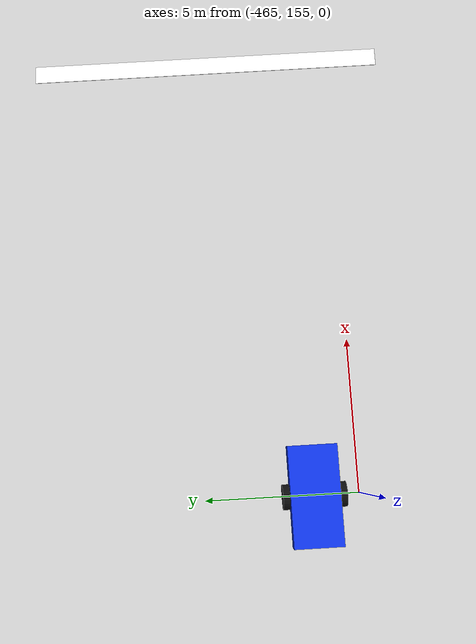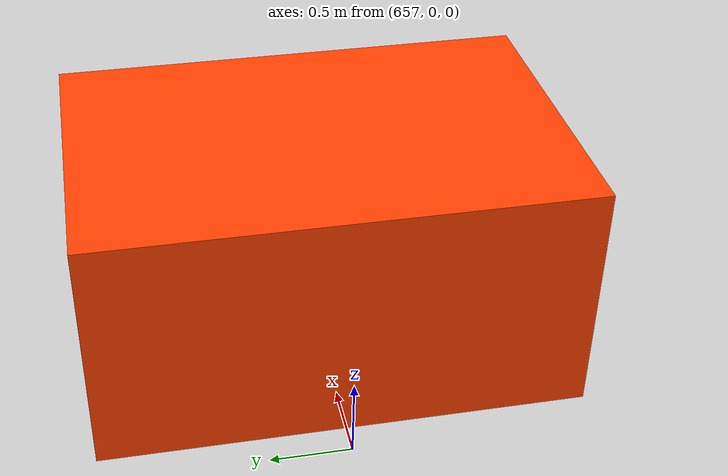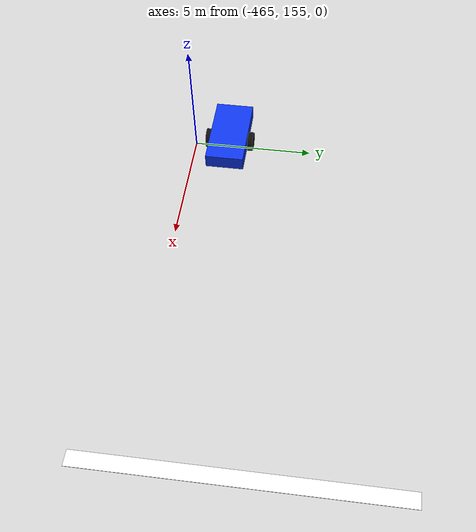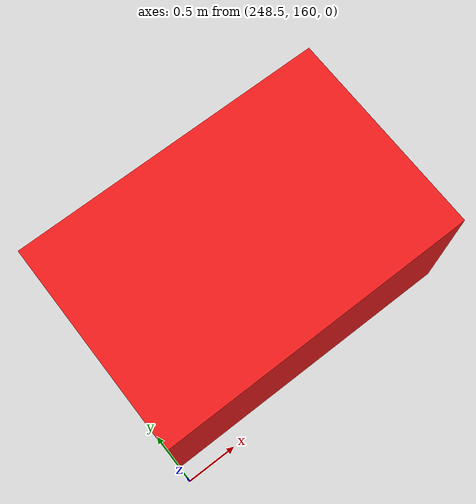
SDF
<sdf version="1.6">
 <world name="track_3km">
  <gravity>0 0 -9.80665</gravity>
  <physics name="default_physics" type="ode">
   <max_step_size>0.001</max_step_size>
   <real_time_update_rate>1000</real_time_update_rate>
  </physics>
  <include><uri>model://sun</uri></include>
  <include><uri>model://ground_plane</uri></include>
  <model name="simple_vehicle">
   <pose>-465 156.5 0 0 0 0</pose>
   <link name="chassis">
    <pose>0 0 0.65 0 0 0</pose>
    <inertial>
     <mass>80</mass>
     <inertia><ixx>20</ixx><iyy>40</iyy><izz>45</izz><ixy>0</ixy><ixz>0</ixz><iyz>0</iyz></inertia>
    </inertial>
    <collision name="collision"><geometry><box><size>3.2 1.6 0.6</size></box></geometry></collision>
    <visual name="visual">
     <geometry><box><size>3.2 1.6 0.6</size></box></geometry>
     <material><ambient>0.05 0.2 0.9 1</ambient><diffuse>0.05 0.2 0.9 1</diffuse></material>
    </visual>
   </link>
   <link name="left_wheel">
    <pose>0 0.9 0.42 1.5708 0 0</pose>
    <inertial>
     <mass>5</mass>
     <inertia><ixx>0.4</ixx><iyy>0.4</iyy><izz>0.4</izz><ixy>0</ixy><ixz>0</ixz><iyz>0</iyz></inertia>
    </inertial>
    <collision name="collision">
     <geometry><cylinder><radius>0.4</radius><length>0.25</length></cylinder></geometry>
     <surface><friction><ode><mu>2</mu><mu2>2</mu2></ode></friction></surface>
    </collision>
    <visual name="visual">
     <geometry><cylinder><radius>0.4</radius><length>0.25</length></cylinder></geometry>
     <material><ambient>0.05 0.05 0.05 1</ambient><diffuse>0.05 0.05 0.05 1</diffuse></material>
    </visual>
   </link>
   <link name="right_wheel">
    <pose>0 -0.9 0.42 1.5708 0 0</pose>
    <inertial>
     <mass>5</mass>
     <inertia><ixx>0.4</ixx><iyy>0.4</iyy><izz>0.4</izz><ixy>0</ixy><ixz>0</ixz><iyz>0</iyz></inertia>
    </inertial>
    <collision name="collision">
     <geometry><cylinder><radius>0.4</radius><length>0.25</length></cylinder></geometry>
     <surface><friction><ode><mu>2</mu><mu2>2</mu2></ode></friction></surface>
    </collision>
    <visual name="visual">
     <geometry><cylinder><radius>0.4</radius><length>0.25</length></cylinder></geometry>
     <material><ambient>0.05 0.05 0.05 1</ambient><diffuse>0.05 0.05 0.05 1</diffuse></material>
    </visual>
   </link>
   <link name="front_caster">
    <pose>1.15 0 0.25 0 0 0</pose>
    <inertial>
     <mass>2</mass>
     <inertia><ixx>0.05</ixx><iyy>0.05</iyy><izz>0.05</izz><ixy>0</ixy><ixz>0</ixz><iyz>0</iyz></inertia>
    </inertial>
    <collision name="collision">
     <geometry><sphere><radius>0.25</radius></sphere></geometry>
     <surface><friction><ode><mu>0.05</mu><mu2>0.05</mu2></ode></friction></surface>
    </collision>
    <visual name="visual">
     <geometry><sphere><radius>0.25</radius></sphere></geometry>
     <material><ambient>0.1 0.1 0.1 1</ambient><diffuse>0.1 0.1 0.1 1</diffuse></material>
    </visual>
   </link>
   <link name="rear_caster">
    <pose>-1.15 0 0.25 0 0 0</pose>
    <inertial>
     <mass>2</mass>
     <inertia><ixx>0.05</ixx><iyy>0.05</iyy><izz>0.05</izz><ixy>0</ixy><ixz>0</ixz><iyz>0</iyz></inertia>
    </inertial>
    <collision name="collision">
     <geometry><sphere><radius>0.25</radius></sphere></geometry>
     <surface><friction><ode><mu>0.05</mu><mu2>0.05</mu2></ode></friction></surface>
    </collision>
    <visual name="visual">
     <geometry><sphere><radius>0.25</radius></sphere></geometry>
     <material><ambient>0.1 0.1 0.1 1</ambient><diffuse>0.1 0.1 0.1 1</diffuse></material>
    </visual>
   </link>
   <joint name="left_wheel_joint" type="revolute">
    <parent>chassis</parent>
    <child>left_wheel</child>
    <axis><xyz>0 1 0</xyz><limit><lower>-1e16</lower><upper>1e16</upper></limit></axis>
   </joint>
   <joint name="right_wheel_joint" type="revolute">
    <parent>chassis</parent>
    <child>right_wheel</child>
    <axis><xyz>0 1 0</xyz><limit><lower>-1e16</lower><upper>1e16</upper></limit></axis>
   </joint>
   <joint name="front_caster_joint" type="ball"><parent>chassis</parent><child>front_caster</child></joint>
   <joint name="rear_caster_joint" type="ball"><parent>chassis</parent><child>rear_caster</child></joint>
   <plugin name="vehicle_diff_drive" filename="libgazebo_ros_diff_drive.so">
    <ros><remapping>cmd_vel:=/cmd_vel</remapping><remapping>odom:=/vehicle/odom</remapping></ros>
    <update_rate>50</update_rate>
    <left_joint>left_wheel_joint</left_joint>
    <right_joint>right_wheel_joint</right_joint>
    <wheel_separation>1.8</wheel_separation>
    <wheel_diameter>0.8</wheel_diameter>
    <max_wheel_torque>120</max_wheel_torque>
    <max_wheel_acceleration>2.0</max_wheel_acceleration>
    <publish_odom>true</publish_odom>
    <publish_odom_tf>true</publish_odom_tf>
    <odometry_frame>odom</odometry_frame>
    <robot_base_frame>chassis</robot_base_frame>
   </plugin>
  </model>
  <model name="start_stop_line">
   <static>true</static>
   <pose>-450 159.155 0.031 0 0 0</pose>
   <link name="line_link">
    <visual name="line_visual">
     <geometry><box><size>0.6 12 0.02</size></box></geometry>
     <material><ambient>1 1 1 1</ambient><diffuse>1 1 1 1</diffuse></material>
    </visual>
   </link>
  </model>
  <model name="obstacle_top_left_lane">
   <static>true</static>
   <pose>-200 157.155 0.75 0 0 0</pose>
   <link name="body">
    <collision name="collision"><geometry><box><size>3 2 1.5</size></box></geometry></collision>
    <visual name="visual">
     <geometry><box><size>3 2 1.5</size></box></geometry>
     <material><ambient>1 0.25 0 1</ambient><diffuse>1 0.25 0 1</diffuse></material>
    </visual>
   </link>
  </model>
  <model name="obstacle_top_right_lane">
   <static>true</static>
   <pose>250 161.155 0.75 0 0 0</pose>
   <link name="body">
    <collision name="collision"><geometry><box><size>3 2 1.5</size></box></geometry></collision>
    <visual name="visual">
     <geometry><box><size>3 2 1.5</size></box></geometry>
     <material><ambient>0.9 0.1 0.1 1</ambient><diffuse>0.9 0.1 0.1 1</diffuse></material>
    </visual>
   </link>
  </model>
  <model name="obstacle_right_curve">
   <static>true</static>
   <pose>658.183 0 0.75 0 0 1.5708</pose>
   <link name="body">
    <collision name="collision"><geometry><box><size>3 2 1.5</size></box></geometry></collision>
    <visual name="visual">
     <geometry><box><size>3 2 1.5</size></box></geometry>
     <material><ambient>1 0.25 0 1</ambient><diffuse>1 0.25 0 1</diffuse></material>
    </visual>
   </link>
  </model>
  <model name="obstacle_bottom">
   <static>true</static>
   <pose>0 -157.155 0.75 0 0 0</pose>
   <link name="body">
    <collision name="collision"><geometry><box><size>3 2 1.5</size></box></geometry></collision>
    <visual name="visual">
     <geometry><box><size>3 2 1.5</size></box></geometry>
     <material><ambient>0.9 0.1 0.1 1</ambient><diffuse>0.9 0.1 0.1 1</diffuse></material>
    </visual>
   </link>
  </model>
  <model name="obstacle_left_curve">
   <static>true</static>
   <pose>-658.183 0 0.75 0 0 1.5708</pose>
   <link name="body">
    <collision name="collision"><geometry><box><size>3 2 1.5</size></box></geometry></collision>
    <visual name="visual">
     <geometry><box><size>3 2 1.5</size></box></geometry>
     <material><ambient>1 0.25 0 1</ambient><diffuse>1 0.25 0 1</diffuse></material>
    </visual>
   </link>
  </model>
 </world>
</sdf>
